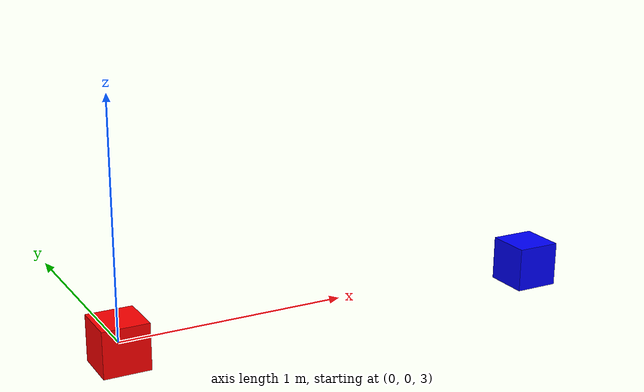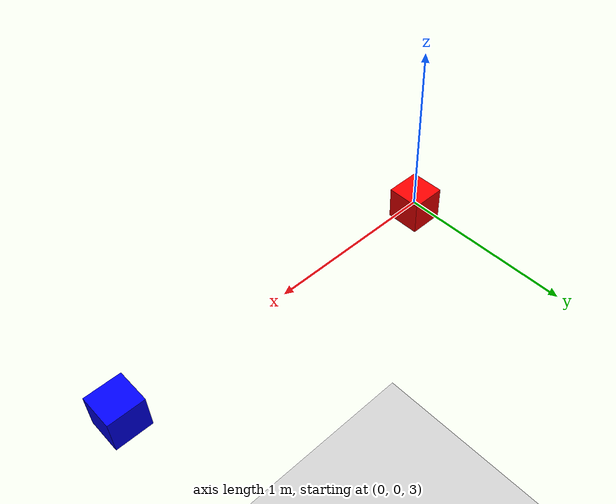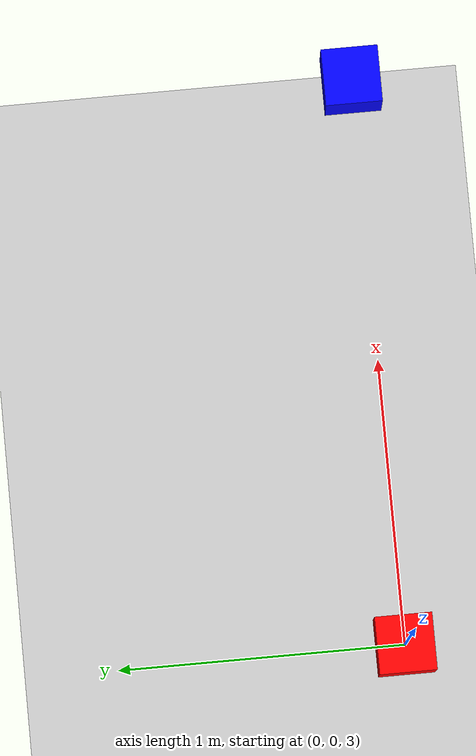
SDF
<?xml version="1.0"?>
<sdf version="1.7">
  <world name="gravity_test">
    <physics type="ode">
      <max_step_size>0.001</max_step_size>
      <real_time_factor>1</real_time_factor>
      <real_time_update_rate>1000</real_time_update_rate>
      <gravity>0 0 -9.8</gravity>
    </physics>

    <!-- Ground plane -->
    <include>
      <uri>model://ground_plane</uri>
    </include>

    <!-- Sun light -->
    <include>
      <uri>model://sun</uri>
    </include>

    <!-- Earth-like gravity test box -->
    <model name="earth_box">
      <pose>0 0 3 0 0 0</pose>
      <static>false</static>
      <link name="link">
        <collision name="collision">
          <geometry>
            <box>
              <size>0.2 0.2 0.2</size>
            </box>
          </geometry>
        </collision>
        <visual name="visual">
          <geometry>
            <box>
              <size>0.2 0.2 0.2</size>
            </box>
          </geometry>
          <material>
            <ambient>1 0 0 1</ambient>
            <diffuse>1 0 0 1</diffuse>
          </material>
        </visual>
        <inertial>
          <mass>0.5</mass>
          <inertia>
            <ixx>0.003333</ixx>
            <ixy>0</ixy>
            <ixz>0</ixz>
            <iyy>0.003333</iyy>
            <iyz>0</iyz>
            <izz>0.003333</izz>
          </inertia>
        </inertial>
      </link>
    </model>

    <!-- Moon-like gravity test box -->
    <model name="moon_box">
      <pose>2 0 3 0 0 0</pose>
      <static>false</static>
      <link name="link">
        <collision name="collision">
          <geometry>
            <box>
              <size>0.2 0.2 0.2</size>
            </box>
          </geometry>
        </collision>
        <visual name="visual">
          <geometry>
            <box>
              <size>0.2 0.2 0.2</size>
            </box>
          </geometry>
          <material>
            <ambient>0 0 1 1</ambient>
            <diffuse>0 0 1</diffuse>
          </material>
        </visual>
        <inertial>
          <mass>0.5</mass>
          <inertia>
            <ixx>0.003333</ixx>
            <ixy>0</ixy>
            <ixz>0</ixz>
            <iyy>0.003333</iyy>
            <iyz>0</iyz>
            <izz>0.003333</izz>
          </inertia>
        </inertial>
      </link>
    </model>
  </world>
</sdf>
